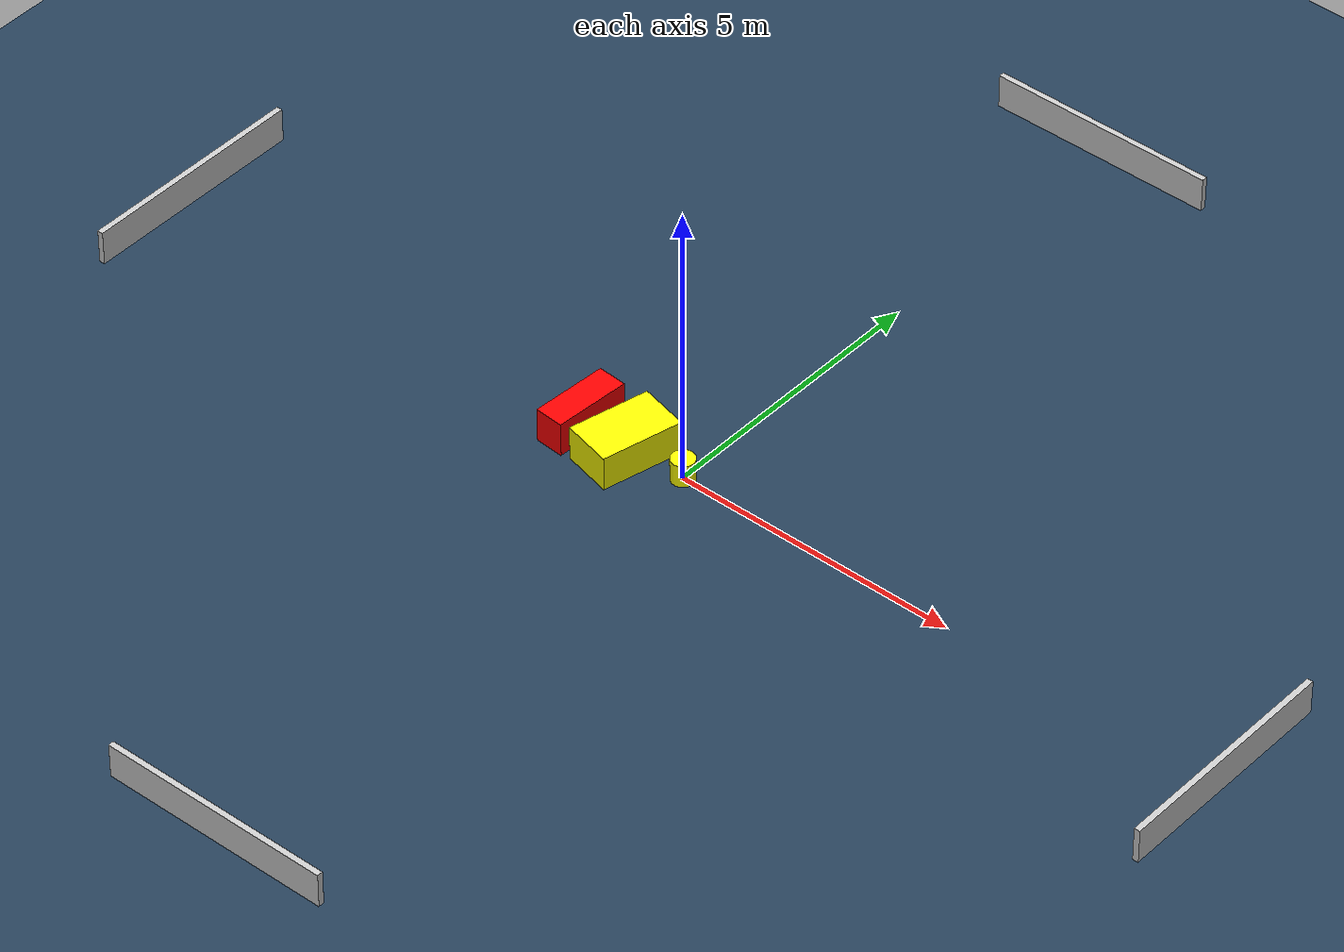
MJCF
<?xml version="1.0" ?>
<mujoco model="generated_environment">
  <option timestep="0.01" integrator="RK4" cone="elliptic"/>
  <default>
    <geom density="1"/>
  </default>
  <asset>
    <texture builtin="gradient" height="3072" name="skybox" rgb1="0.3 0.5 0.7" rgb2="0 0 0" type="skybox" width="512"/>
    <texture builtin="checker" height="300" name="groundplane" rgb1="0.2 0.3 0.4" rgb2="0.1 0.2 0.3" type="2d" width="300"/>
    <material name="groundplane" reflectance="0.2" texrepeat="5 5" texture="groundplane"/>
  </asset>
  <worldbody>
    <light dir="0 0 -1" directional="true" pos="0 0 1.5"/>
    <geom condim="3" friction="0.5 0.005 0.001" material="groundplane" name="floor" pos="0 0 0" size="0 0 0.05" type="plane"/>
    <body name="walls">
      <geom name="wall_1" condim="4" pos="-10.0 0.0 0.3" rgba="0.800000011920929 0.800000011920929 0.800000011920929 1.0" size="0.05 2.0 0.3" type="box"/>
      <geom name="wall_2" condim="4" pos="10.0 0.0 0.3" rgba="0.800000011920929 0.800000011920929 0.800000011920929 1.0" size="0.05 2.0 0.3" type="box"/>
      <geom name="wall_3" condim="4" pos="0.0 -10.0 0.3" rgba="0.800000011920929 0.800000011920929 0.800000011920929 1.0" size="2.0 0.05 0.3" type="box"/>
      <geom name="wall_4" condim="4" pos="0.0 10.0 0.3" rgba="0.800000011920929 0.800000011920929 0.800000011920929 1.0" size="2.0 0.05 0.3" type="box"/>
    </body>
    <body name="robot">
      <joint name="joint_x" type="slide" pos="0 0 0" axis="1 0 0"/>
      <joint name="joint_y" type="slide" pos="0 0 0" axis="0 1 0"/>
      <geom name="robot" type="cylinder" pos="0.0 0.0 0.2" size="0.2 0.2 0.0" mass="5.0" friction="1.0 0.005 0.0001" condim="4" rgba="1.0 1.0 0.0 1.0"/>
    </body>
    <body name="obstacle_1_movable">
      <geom name="obstacle_1_movable" condim="4" pos="-0.9811142447436164 -0.1616277950957167 0.3" euler="0 0 256.3700016607011" friction="0.0 0.005 0.001" rgba="1.0 1.0 0.0 1.0" size="0.7070977649461616 0.43735561162696035 0.3" type="box" mass="0.1"/>
      <joint type="free"/>
    </body>
    <body name="obstacle_2_static">
      <geom name="obstacle_2_static" condim="4" pos="-1.906930528830244 -0.10889829909149618 0.3" euler="0 0 265.73621847503716" friction="0.0 0.005 0.001" rgba="1.0 0.0 0.0 1.0" size="0.6620739615626035 0.25101261968425104 0.3" type="box"/>
    </body>
  </worldbody>
  <actuator>
    <motor name="actuator_x" joint="joint_x" gear="1" ctrlrange="-1 1"/>
    <motor name="actuator_y" joint="joint_y" gear="1" ctrlrange="-1 1"/>
  </actuator>
</mujoco>
